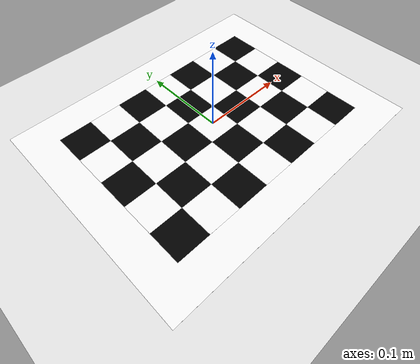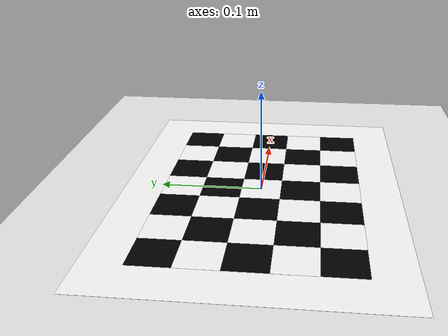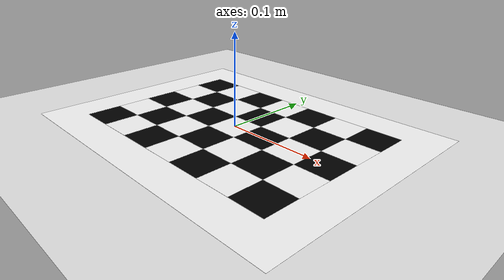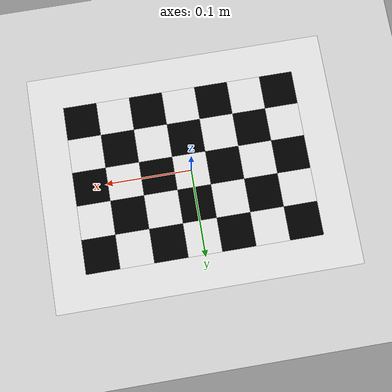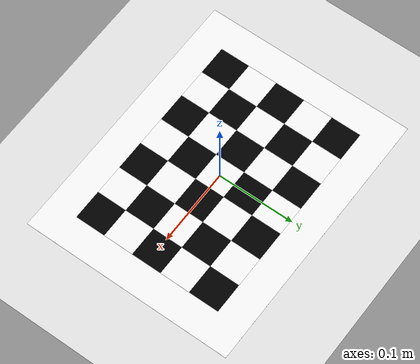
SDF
<sdf version="1.6">
 <world name="default">
  <light name="sun" type="directional">
   <pose>0 0 10 0 -0 0</pose>
   <diffuse>0.8 0.8 0.8 1</diffuse>
   <specular>0.2 0.2 0.2 1</specular>
   <attenuation>
    <range>1000</range>
    <constant>0.9</constant>
    <linear>0.01</linear>
    <quadratic>0.001</quadratic>
   </attenuation>
   <direction>-0.5 0.1 -0.9</direction>
  </light>
  <model name="ground_plane">
   <static>1</static>
   <link name="link">
    <collision name="collision">
     <geometry><plane><normal>0 0 1</normal><size>100 100</size></plane></geometry>
     <surface><friction><ode><mu>100</mu><mu2>50</mu2></ode></friction></surface>
    </collision>
    <visual name="visual">
     <cast_shadows>0</cast_shadows>
     <geometry><plane><normal>0 0 1</normal><size>100 100</size></plane></geometry>
     <material>
      <script><uri>file://media/materials/scripts/gazebo.material</uri><name>Gazebo/WhiteGlow</name></script>
     </material>
    </visual>
   </link>
  </model>
  <include><uri>model://checkerboard_6_4_0_039</uri></include>
  <gravity>0 0 -9.8</gravity>
  <magnetic_field>6e-06 2.3e-05 -4.2e-05</magnetic_field>
  <atmosphere type="adiabatic"/>
  <physics name="default_physics" default="0" type="ode">
   <max_step_size>0.001</max_step_size>
   <real_time_factor>1</real_time_factor>
   <real_time_update_rate>1000</real_time_update_rate>
  </physics>
  <scene><ambient>0.4 0.4 0.4 1</ambient><background>0.7 0.7 0.7 1</background><shadows>1</shadows></scene>
  <spherical_coordinates>
   <surface_model>EARTH_WGS84</surface_model>
   <latitude_deg>0</latitude_deg>
   <longitude_deg>0</longitude_deg>
   <elevation>0</elevation>
   <heading_deg>0</heading_deg>
  </spherical_coordinates>
 </world>
</sdf>

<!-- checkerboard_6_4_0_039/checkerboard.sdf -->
<sdf version="1.4">
  <model name="checkerboard_6_4_0_039">
  <static>true</static>
  <link name="checkerboard_6_4_0_039_body">
      <visual name="checker_0_0">
        <pose>-0.117 -0.078 0 0 0 0</pose>
        <geometry>
          <box>
            <size>0.039 0.039 0.0002</size>
          </box>
        </geometry>
        <material>
          <ambient>0 0 0 1</ambient>
          <diffuse>0 0 0 1</diffuse>
          <specular>0 0 0 1</specular>
          <emissive>0 0 0 1</emissive>
        </material>
      </visual>
      <visual name="checker_0_1">
        <pose>-0.117 -0.03900000000000001 0 0 0 0</pose>
        <geometry>
          <box>
            <size>0.039 0.039 0.0002</size>
          </box>
        </geometry>
        <material>
          <ambient>1 1 1 1</ambient>
          <diffuse>1 1 1 1</diffuse>
          <specular>1 1 1 1</specular>
          <emissive>1 1 1 1</emissive>
        </material>
      </visual>
      <visual name="checker_0_2">
        <pose>-0.117 0.0 0 0 0 0</pose>
        <geometry>
          <box>
            <size>0.039 0.039 0.0002</size>
          </box>
        </geometry>
        <material>
          <ambient>0 0 0 1</ambient>
          <diffuse>0 0 0 1</diffuse>
          <specular>0 0 0 1</specular>
          <emissive>0 0 0 1</emissive>
        </material>
      </visual>
      <visual name="checker_0_3">
        <pose>-0.117 0.03899999999999998 0 0 0 0</pose>
        <geometry>
          <box>
            <size>0.039 0.039 0.0002</size>
          </box>
        </geometry>
        <material>
          <ambient>1 1 1 1</ambient>
          <diffuse>1 1 1 1</diffuse>
          <specular>1 1 1 1</specular>
          <emissive>1 1 1 1</emissive>
        </material>
      </visual>
      <visual name="checker_0_4">
        <pose>-0.117 0.07799999999999999 0 0 0 0</pose>
        <geometry>
          <box>
            <size>0.039 0.039 0.0002</size>
          </box>
        </geometry>
        <material>
          <ambient>0 0 0 1</ambient>
          <diffuse>0 0 0 1</diffuse>
          <specular>0 0 0 1</specular>
          <emissive>0 0 0 1</emissive>
        </material>
      </visual>
      <visual name="checker_1_0">
        <pose>-0.07800000000000001 -0.078 0 0 0 0</pose>
        <geometry>
          <box>
            <size>0.039 0.039 0.0002</size>
          </box>
        </geometry>
        <material>
          <ambient>1 1 1 1</ambient>
          <diffuse>1 1 1 1</diffuse>
          <specular>1 1 1 1</specular>
          <emissive>1 1 1 1</emissive>
        </material>
      </visual>
      <visual name="checker_1_1">
        <pose>-0.07800000000000001 -0.03900000000000001 0 0 0 0</pose>
        <geometry>
          <box>
            <size>0.039 0.039 0.0002</size>
          </box>
        </geometry>
        <material>
          <ambient>0 0 0 1</ambient>
          <diffuse>0 0 0 1</diffuse>
          <specular>0 0 0 1</specular>
          <emissive>0 0 0 1</emissive>
        </material>
      </visual>
      <visual name="checker_1_2">
        <pose>-0.07800000000000001 0.0 0 0 0 0</pose>
        <geometry>
          <box>
            <size>0.039 0.039 0.0002</size>
          </box>
        </geometry>
        <material>
          <ambient>1 1 1 1</ambient>
          <diffuse>1 1 1 1</diffuse>
          <specular>1 1 1 1</specular>
          <emissive>1 1 1 1</emissive>
        </material>
      </visual>
      <visual name="checker_1_3">
        <pose>-0.07800000000000001 0.03899999999999998 0 0 0 0</pose>
        <geometry>
          <box>
            <size>0.039 0.039 0.0002</size>
          </box>
        </geometry>
        <material>
          <ambient>0 0 0 1</ambient>
          <diffuse>0 0 0 1</diffuse>
          <specular>0 0 0 1</specular>
          <emissive>0 0 0 1</emissive>
        </material>
      </visual>
      <visual name="checker_1_4">
        <pose>-0.07800000000000001 0.07799999999999999 0 0 0 0</pose>
        <geometry>
          <box>
            <size>0.039 0.039 0.0002</size>
          </box>
        </geometry>
        <material>
          <ambient>1 1 1 1</ambient>
          <diffuse>1 1 1 1</diffuse>
          <specular>1 1 1 1</specular>
          <emissive>1 1 1 1</emissive>
        </material>
      </visual>
      <visual name="checker_2_0">
        <pose>-0.03900000000000001 -0.078 0 0 0 0</pose>
        <geometry>
          <box>
            <size>0.039 0.039 0.0002</size>
          </box>
        </geometry>
        <material>
          <ambient>0 0 0 1</ambient>
          <diffuse>0 0 0 1</diffuse>
          <specular>0 0 0 1</specular>
          <emissive>0 0 0 1</emissive>
        </material>
      </visual>
      <visual name="checker_2_1">
        <pose>-0.03900000000000001 -0.03900000000000001 0 0 0 0</pose>
        <geometry>
          <box>
            <size>0.039 0.039 0.0002</size>
          </box>
        </geometry>
        <material>
          <ambient>1 1 1 1</ambient>
          <diffuse>1 1 1 1</diffuse>
          <specular>1 1 1 1</specular>
          <emissive>1 1 1 1</emissive>
        </material>
      </visual>
      <visual name="checker_2_2">
        <pose>-0.03900000000000001 0.0 0 0 0 0</pose>
        <geometry>
          <box>
            <size>0.039 0.039 0.0002</size>
          </box>
        </geometry>
        <material>
          <ambient>0 0 0 1</ambient>
          <diffuse>0 0 0 1</diffuse>
          <specular>0 0 0 1</specular>
          <emissive>0 0 0 1</emissive>
        </material>
      </visual>
      <visual name="checker_2_3">
        <pose>-0.03900000000000001 0.03899999999999998 0 0 0 0</pose>
        <geometry>
          <box>
            <size>0.039 0.039 0.0002</size>
          </box>
        </geometry>
        <material>
          <ambient>1 1 1 1</ambient>
          <diffuse>1 1 1 1</diffuse>
          <specular>1 1 1 1</specular>
          <emissive>1 1 1 1</emissive>
        </material>
      </visual>
      <visual name="checker_2_4">
        <pose>-0.03900000000000001 0.07799999999999999 0 0 0 0</pose>
        <geometry>
          <box>
            <size>0.039 0.039 0.0002</size>
          </box>
        </geometry>
        <material>
          <ambient>0 0 0 1</ambient>
          <diffuse>0 0 0 1</diffuse>
          <specular>0 0 0 1</specular>
          <emissive>0 0 0 1</emissive>
        </material>
      </visual>
      <visual name="checker_3_0">
        <pose>-2.7755575615628914e-17 -0.078 0 0 0 0</pose>
        <geometry>
          <box>
            <size>0.039 0.039 0.0002</size>
          </box>
        </geometry>
        <material>
          <ambient>1 1 1 1</ambient>
          <diffuse>1 1 1 1</diffuse>
          <specular>1 1 1 1</specular>
          <emissive>1 1 1 1</emissive>
        </material>
      </visual>
      <visual name="checker_3_1">
        <pose>-2.7755575615628914e-17 -0.03900000000000001 0 0 0 0</pose>
        <geometry>
          <box>
            <size>0.039 0.039 0.0002</size>
          </box>
        </geometry>
        <material>
          <ambient>0 0 0 1</ambient>
          <diffuse>0 0 0 1</diffuse>
          <specular>0 0 0 1</specular>
          <emissive>0 0 0 1</emissive>
        </material>
      </visual>
      <visual name="checker_3_2">
        <pose>-2.7755575615628914e-17 0.0 0 0 0 0</pose>
        <geometry>
          <box>
            <size>0.039 0.039 0.0002</size>
          </box>
        </geometry>
        <material>
          <ambient>1 1 1 1</ambient>
          <diffuse>1 1 1 1</diffuse>
          <specular>1 1 1 1</specular>
          <emissive>1 1 1 1</emissive>
        </material>
      </visual>
      <visual name="checker_3_3">
        <pose>-2.7755575615628914e-17 0.03899999999999998 0 0 0 0</pose>
        <geometry>
          <box>
            <size>0.039 0.039 0.0002</size>
          </box>
        </geometry>
        <material>
          <ambient>0 0 0 1</ambient>
          <diffuse>0 0 0 1</diffuse>
          <specular>0 0 0 1</specular>
          <emissive>0 0 0 1</emissive>
        </material>
      </visual>
      <visual name="checker_3_4">
        <pose>-2.7755575615628914e-17 0.07799999999999999 0 0 0 0</pose>
        <geometry>
          <box>
            <size>0.039 0.039 0.0002</size>
          </box>
        </geometry>
        <material>
          <ambient>1 1 1 1</ambient>
          <diffuse>1 1 1 1</diffuse>
          <specular>1 1 1 1</specular>
          <emissive>1 1 1 1</emissive>
        </material>
      </visual>
      <visual name="checker_4_0">
        <pose>0.03899999999999998 -0.078 0 0 0 0</pose>
        <geometry>
          <box>
            <size>0.039 0.039 0.0002</size>
          </box>
        </geometry>
        <material>
          <ambient>0 0 0 1</ambient>
          <diffuse>0 0 0 1</diffuse>
          <specular>0 0 0 1</specular>
          <emissive>0 0 0 1</emissive>
        </material>
      </visual>
      <visual name="checker_4_1">
        <pose>0.03899999999999998 -0.03900000000000001 0 0 0 0</pose>
        <geometry>
          <box>
            <size>0.039 0.039 0.0002</size>
          </box>
        </geometry>
        <material>
          <ambient>1 1 1 1</ambient>
          <diffuse>1 1 1 1</diffuse>
          <specular>1 1 1 1</specular>
          <emissive>1 1 1 1</emissive>
        </material>
      </visual>
      <visual name="checker_4_2">
        <pose>0.03899999999999998 0.0 0 0 0 0</pose>
        <geometry>
          <box>
            <size>0.039 0.039 0.0002</size>
          </box>
        </geometry>
        <material>
          <ambient>0 0 0 1</ambient>
          <diffuse>0 0 0 1</diffuse>
          <specular>0 0 0 1</specular>
          <emissive>0 0 0 1</emissive>
        </material>
      </visual>
      <visual name="checker_4_3">
        <pose>0.03899999999999998 0.03899999999999998 0 0 0 0</pose>
        <geometry>
          <box>
            <size>0.039 0.039 0.0002</size>
          </box>
        </geometry>
        <material>
          <ambient>1 1 1 1</ambient>
          <diffuse>1 1 1 1</diffuse>
          <specular>1 1 1 1</specular>
          <emissive>1 1 1 1</emissive>
        </material>
      </visual>
      <visual name="checker_4_4">
        <pose>0.03899999999999998 0.07799999999999999 0 0 0 0</pose>
        <geometry>
          <box>
            <size>0.039 0.039 0.0002</size>
          </box>
        </geometry>
        <material>
          <ambient>0 0 0 1</ambient>
          <diffuse>0 0 0 1</diffuse>
          <specular>0 0 0 1</specular>
          <emissive>0 0 0 1</emissive>
        </material>
      </visual>
      <visual name="checker_5_0">
        <pose>0.07799999999999999 -0.078 0 0 0 0</pose>
        <geometry>
          <box>
            <size>0.039 0.039 0.0002</size>
          </box>
        </geometry>
        <material>
          <ambient>1 1 1 1</ambient>
          <diffuse>1 1 1 1</diffuse>
          <specular>1 1 1 1</specular>
          <emissive>1 1 1 1</emissive>
        </material>
      </visual>
      <visual name="checker_5_1">
        <pose>0.07799999999999999 -0.03900000000000001 0 0 0 0</pose>
        <geometry>
          <box>
            <size>0.039 0.039 0.0002</size>
          </box>
        </geometry>
        <material>
          <ambient>0 0 0 1</ambient>
          <diffuse>0 0 0 1</diffuse>
          <specular>0 0 0 1</specular>
          <emissive>0 0 0 1</emissive>
        </material>
      </visual>
      <visual name="checker_5_2">
        <pose>0.07799999999999999 0.0 0 0 0 0</pose>
        <geometry>
          <box>
            <size>0.039 0.039 0.0002</size>
          </box>
        </geometry>
        <material>
          <ambient>1 1 1 1</ambient>
          <diffuse>1 1 1 1</diffuse>
          <specular>1 1 1 1</specular>
          <emissive>1 1 1 1</emissive>
        </material>
      </visual>
      <visual name="checker_5_3">
        <pose>0.07799999999999999 0.03899999999999998 0 0 0 0</pose>
        <geometry>
          <box>
            <size>0.039 0.039 0.0002</size>
          </box>
        </geometry>
        <material>
          <ambient>0 0 0 1</ambient>
          <diffuse>0 0 0 1</diffuse>
          <specular>0 0 0 1</specular>
          <emissive>0 0 0 1</emissive>
        </material>
      </visual>
      <visual name="checker_5_4">
        <pose>0.07799999999999999 0.07799999999999999 0 0 0 0</pose>
        <geometry>
          <box>
            <size>0.039 0.039 0.0002</size>
          </box>
        </geometry>
        <material>
          <ambient>1 1 1 1</ambient>
          <diffuse>1 1 1 1</diffuse>
          <specular>1 1 1 1</specular>
          <emissive>1 1 1 1</emissive>
        </material>
      </visual>
      <visual name="checker_6_0">
        <pose>0.11699999999999999 -0.078 0 0 0 0</pose>
        <geometry>
          <box>
            <size>0.039 0.039 0.0002</size>
          </box>
        </geometry>
        <material>
          <ambient>0 0 0 1</ambient>
          <diffuse>0 0 0 1</diffuse>
          <specular>0 0 0 1</specular>
          <emissive>0 0 0 1</emissive>
        </material>
      </visual>
      <visual name="checker_6_1">
        <pose>0.11699999999999999 -0.03900000000000001 0 0 0 0</pose>
        <geometry>
          <box>
            <size>0.039 0.039 0.0002</size>
          </box>
        </geometry>
        <material>
          <ambient>1 1 1 1</ambient>
          <diffuse>1 1 1 1</diffuse>
          <specular>1 1 1 1</specular>
          <emissive>1 1 1 1</emissive>
        </material>
      </visual>
      <visual name="checker_6_2">
        <pose>0.11699999999999999 0.0 0 0 0 0</pose>
        <geometry>
          <box>
            <size>0.039 0.039 0.0002</size>
          </box>
        </geometry>
        <material>
          <ambient>0 0 0 1</ambient>
          <diffuse>0 0 0 1</diffuse>
          <specular>0 0 0 1</specular>
          <emissive>0 0 0 1</emissive>
        </material>
      </visual>
      <visual name="checker_6_3">
        <pose>0.11699999999999999 0.03899999999999998 0 0 0 0</pose>
        <geometry>
          <box>
            <size>0.039 0.039 0.0002</size>
          </box>
        </geometry>
        <material>
          <ambient>1 1 1 1</ambient>
          <diffuse>1 1 1 1</diffuse>
          <specular>1 1 1 1</specular>
          <emissive>1 1 1 1</emissive>
        </material>
      </visual>
      <visual name="checker_6_4">
        <pose>0.11699999999999999 0.07799999999999999 0 0 0 0</pose>
        <geometry>
          <box>
            <size>0.039 0.039 0.0002</size>
          </box>
        </geometry>
        <material>
          <ambient>0 0 0 1</ambient>
          <diffuse>0 0 0 1</diffuse>
          <specular>0 0 0 1</specular>
          <emissive>0 0 0 1</emissive>
        </material>
      </visual>
      <visual name="checker_backdrop">
        <pose>0 0 0 0 0 0</pose>
        <geometry>
          <box>
            <size>0.351 0.273 0.0001</size>
          </box>
        </geometry>
        <material>
          <ambient>1 1 1 1</ambient>
          <diffuse>1 1 1 1</diffuse>
          <specular>1 1 1 1</specular>
          <emissive>1 1 1 1</emissive>
        </material>
      </visual>
    </link>
  </model>
</sdf>
